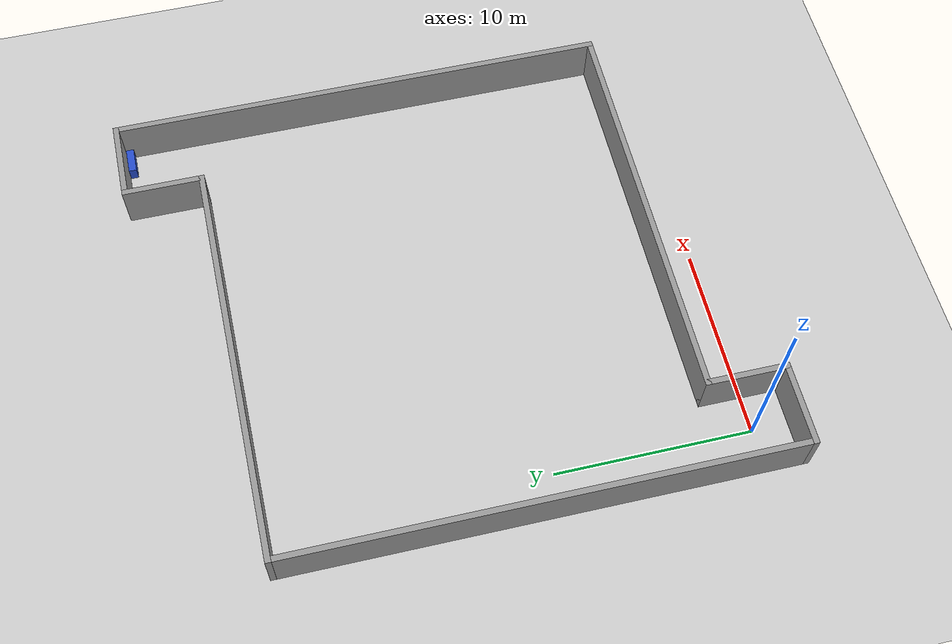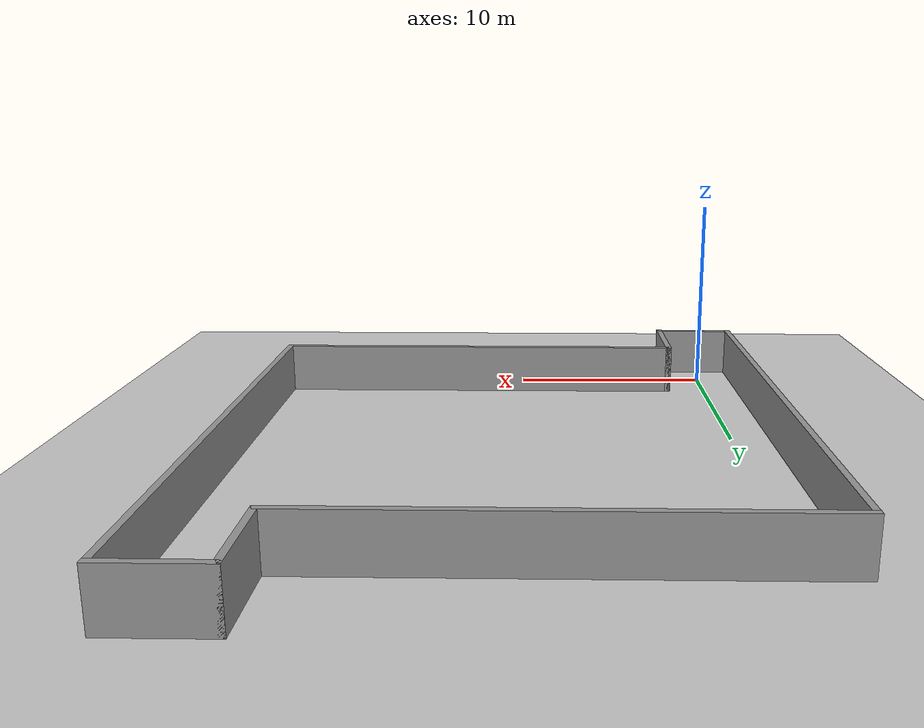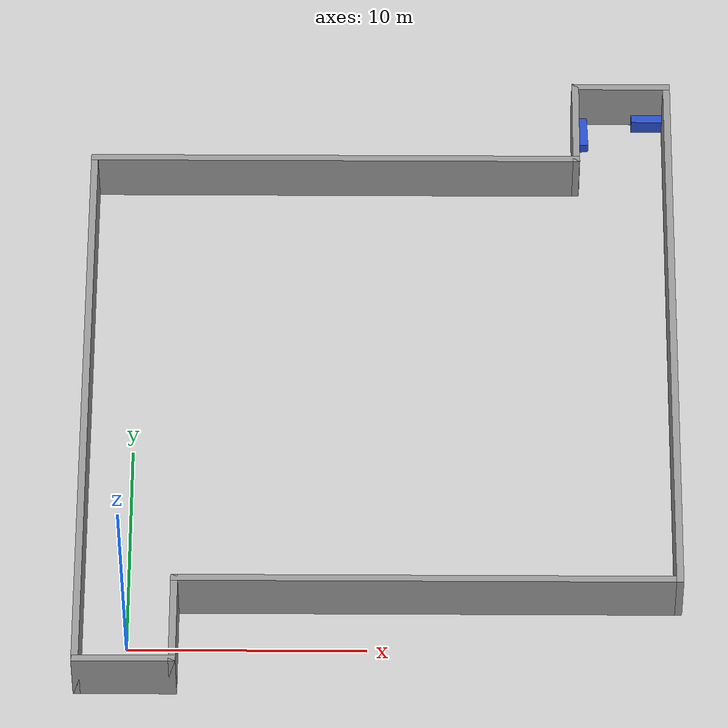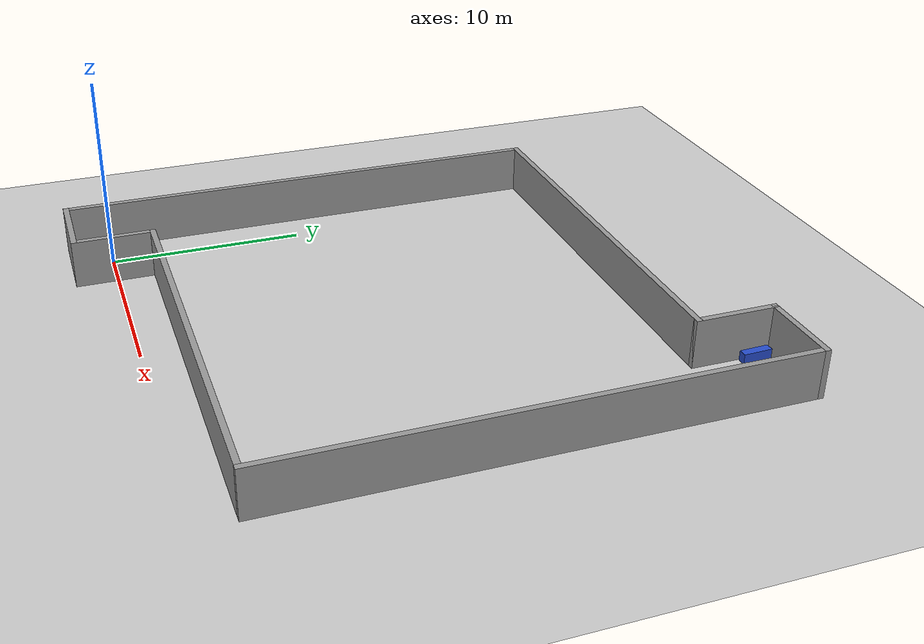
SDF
<sdf version="1.6">
 <world name="default">
  <gravity>0 0 -9.8</gravity>
  <magnetic_field>6e-06 2.3e-05 -4.2e-05</magnetic_field>
  <atmosphere type="adiabatic"/>
  <physics name="default_physics" default="0" type="ode">
   <max_step_size>0.001</max_step_size>
   <real_time_factor>1</real_time_factor>
   <real_time_update_rate>1000</real_time_update_rate>
  </physics>
  <scene><ambient>0.4 0.4 0.4 1</ambient><background>0.7 0.7 0.7 1</background><shadows>1</shadows></scene>
  <spherical_coordinates>
   <surface_model>EARTH_WGS84</surface_model>
   <latitude_deg>0</latitude_deg>
   <longitude_deg>0</longitude_deg>
   <elevation>0</elevation>
   <heading_deg>0</heading_deg>
  </spherical_coordinates>
  <model name="DelZona">
   <pose>10.5 13 0 0 -0 0</pose>
   <link name="Wall_10">
    <collision name="Wall_10_Collision">
     <geometry><box><size>4.3 0.3 2.5</size></box></geometry>
     <pose>0 0 1.25 0 -0 0</pose>
    </collision>
    <visual name="Wall_10_Visual">
     <pose>0 0 1.25 0 -0 0</pose>
     <geometry><box><size>4.3 0.3 2.5</size></box></geometry>
     <material>
      <script><uri>file://media/materials/scripts/gazebo.material</uri><name>Gazebo/Grey</name></script>
      <ambient>1 1 1 1</ambient>
     </material>
     <meta><layer>0</layer></meta>
    </visual>
    <pose>-8.5 -13 0 0 -0 1.5708</pose>
   </link>
   <link name="Wall_12">
    <collision name="Wall_12_Collision">
     <geometry><box><size>21 0.3 2.5</size></box></geometry>
     <pose>0 0 1.25 0 -0 0</pose>
    </collision>
    <visual name="Wall_12_Visual">
     <pose>0 0 1.25 0 -0 0</pose>
     <geometry><box><size>21 0.3 2.5</size></box></geometry>
     <material>
      <script><uri>file://media/materials/scripts/gazebo.material</uri><name>Gazebo/Grey</name></script>
      <ambient>1 1 1 1</ambient>
     </material>
     <meta><layer>0</layer></meta>
    </visual>
    <pose>1.85 -11 0 0 -0 0</pose>
   </link>
   <link name="Wall_16">
    <collision name="Wall_16_Collision">
     <geometry><box><size>26 0.3 2.5</size></box></geometry>
     <pose>0 0 1.25 0 -0 0</pose>
    </collision>
    <visual name="Wall_16_Visual">
     <pose>0 0 1.25 0 -0 0</pose>
     <geometry><box><size>26 0.3 2.5</size></box></geometry>
     <material>
      <script><uri>file://media/materials/scripts/gazebo.material</uri><name>Gazebo/Grey</name></script>
      <ambient>1 1 1 1</ambient>
     </material>
     <meta><layer>0</layer></meta>
    </visual>
    <pose>12.5 1.85 0 0 -0 1.5708</pose>
   </link>
   <link name="Wall_18">
    <collision name="Wall_18_Collision">
     <geometry><box><size>4.3 0.3 2.5</size></box></geometry>
     <pose>0 0 1.25 0 -0 0</pose>
    </collision>
    <visual name="Wall_18_Visual">
     <pose>0 0 1.25 0 -0 0</pose>
     <geometry><box><size>4.3 0.3 2.5</size></box></geometry>
     <material>
      <script><uri>file://media/materials/scripts/gazebo.material</uri><name>Gazebo/Grey</name></script>
      <ambient>1 1 1 1</ambient>
     </material>
     <meta><layer>0</layer></meta>
    </visual>
    <pose>8.5 13 0 0 -0 1.5708</pose>
   </link>
   <link name="Wall_20">
    <collision name="Wall_20_Collision">
     <geometry><box><size>4.3 0.3 2.5</size></box></geometry>
     <pose>0 0 1.25 0 -0 0</pose>
    </collision>
    <visual name="Wall_20_Visual">
     <pose>0 0 1.25 0 -0 0</pose>
     <geometry><box><size>4.3 0.3 2.5</size></box></geometry>
     <material>
      <script><uri>file://media/materials/scripts/gazebo.material</uri><name>Gazebo/Grey</name></script>
      <ambient>1 1 1 1</ambient>
     </material>
     <meta><layer>0</layer></meta>
    </visual>
    <pose>10.5 15 0 0 -0 0</pose>
   </link>
   <link name="Wall_22">
    <collision name="Wall_22_Collision">
     <geometry><box><size>21.3 0.3 2.5</size></box></geometry>
     <pose>0 0 1.25 0 -0 0</pose>
    </collision>
    <visual name="Wall_22_Visual">
     <pose>0 0 1.25 0 -0 0</pose>
     <geometry><box><size>21.3 0.3 2.5</size></box></geometry>
     <material>
      <script><uri>file://media/materials/scripts/gazebo.material</uri><name>Gazebo/Grey</name></script>
      <ambient>1 1 1 1</ambient>
     </material>
     <meta><layer>0</layer></meta>
    </visual>
    <pose>-2 11 0 0 -0 0</pose>
   </link>
   <link name="Wall_4">
    <collision name="Wall_4_Collision">
     <geometry><box><size>26 0.3 2.5</size></box></geometry>
     <pose>0 0 1.25 0 -0 0</pose>
    </collision>
    <visual name="Wall_4_Visual">
     <pose>0 0 1.25 0 -0 0</pose>
     <geometry><box><size>26 0.3 2.5</size></box></geometry>
     <material>
      <script><uri>file://media/materials/scripts/gazebo.material</uri><name>Gazebo/Grey</name></script>
      <ambient>1 1 1 1</ambient>
     </material>
     <meta><layer>0</layer></meta>
    </visual>
    <pose>-12.5 -2.15 0 0 -0 1.5708</pose>
   </link>
   <link name="Wall_8">
    <collision name="Wall_8_Collision">
     <geometry><box><size>4.3 0.3 2.5</size></box></geometry>
     <pose>0 0 1.25 0 -0 0</pose>
    </collision>
    <visual name="Wall_8_Visual">
     <pose>0 0 1.25 0 -0 0</pose>
     <geometry><box><size>4.3 0.3 2.5</size></box></geometry>
     <material>
      <script><uri>file://media/materials/scripts/gazebo.material</uri><name>Gazebo/Grey</name></script>
      <ambient>1 1 1 1</ambient>
     </material>
     <meta><layer>0</layer></meta>
    </visual>
    <pose>-10.5 -15 0 0 -0 0</pose>
   </link>
   <static>1</static>
  </model>
  <model name="unit_box_clone">
   <pose>22.1778 27.624 0.359969 0 0 -1.5701</pose>
   <link name="link">
    <inertial>
     <mass>1</mass>
     <inertia>
      <ixx>0.166667</ixx>
      <ixy>0</ixy>
      <ixz>0</ixz>
      <iyy>0.166667</iyy>
      <iyz>0</iyz>
      <izz>0.166667</izz>
     </inertia>
    </inertial>
    <collision name="collision"><geometry><box><size>0.4 1.34407 0.719939</size></box></geometry></collision>
    <visual name="visual">
     <geometry><box><size>0.4 1.34407 0.719939</size></box></geometry>
     <material>
      <script><name>Gazebo/Blue</name><uri>file://media/materials/scripts/gazebo.material</uri></script>
     </material>
    </visual>
   </link>
  </model>
  <light name="user_directional_light_0" type="directional">
   <pose>19.2284 31.3743 1 0 -0 0</pose>
   <diffuse>0.5 0.5 0.5 1</diffuse>
   <specular>0.1 0.1 0.1 1</specular>
   <direction>0.1 0.1 -0.9</direction>
   <attenuation>
    <range>20</range>
    <constant>0.5</constant>
    <linear>0.01</linear>
    <quadratic>0.001</quadratic>
   </attenuation>
  </light>
  <model name="unit_box_clone_clone">
   <pose>19.3746 27.0535 0.254207 0 0 -3.10826</pose>
   <link name="link">
    <inertial>
     <mass>1</mass>
     <inertia>
      <ixx>0.166667</ixx>
      <ixy>0</ixy>
      <ixz>0</ixz>
      <iyy>0.166667</iyy>
      <iyz>0</iyz>
      <izz>0.166667</izz>
     </inertia>
    </inertial>
    <collision name="collision"><geometry><box><size>0.4 1.4846 0.508414</size></box></geometry></collision>
    <visual name="visual">
     <geometry><box><size>0.4 1.4846 0.508414</size></box></geometry>
     <material>
      <script><name>Gazebo/Blue</name><uri>file://media/materials/scripts/gazebo.material</uri></script>
     </material>
    </visual>
   </link>
  </model>
  <model name="ground_plane">
   <static>1</static>
   <link name="link">
    <collision name="collision">
     <geometry><plane><normal>0 0 1</normal><size>100 100</size></plane></geometry>
     <surface>
      <contact><collide_bitmask>65535</collide_bitmask></contact>
      <friction><ode><mu>100</mu><mu2>50</mu2></ode></friction>
     </surface>
    </collision>
    <visual name="visual">
     <cast_shadows>0</cast_shadows>
     <geometry><plane><normal>0 0 1</normal><size>100 100</size></plane></geometry>
     <material>
      <script><uri>file://media/materials/scripts/gazebo.material</uri><name>Gazebo/Grey</name></script>
     </material>
    </visual>
   </link>
   <pose>-2.14254 0.426341 0 0 -0 0</pose>
  </model>
 </world>
</sdf>
